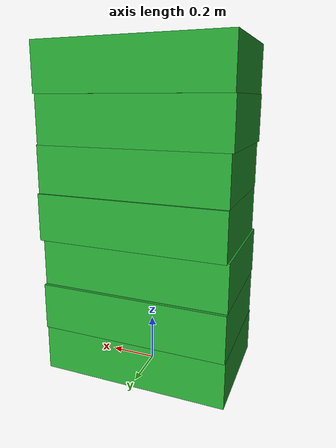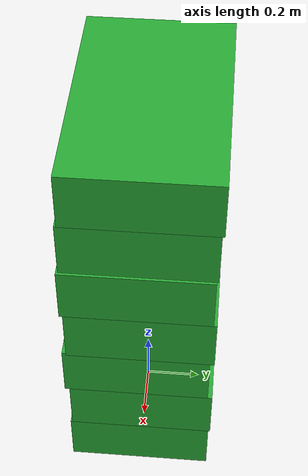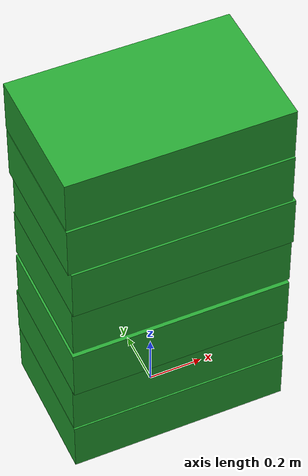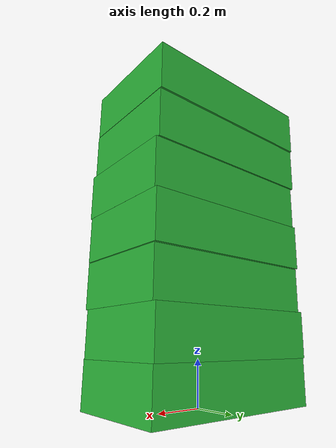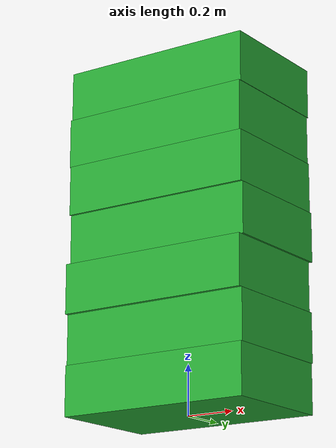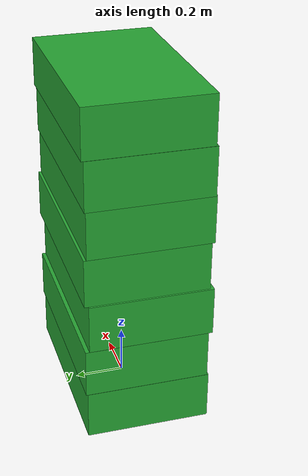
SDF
<?xml version="1.0" encoding="UTF-8"?>
<sdf version='1.4'>
    <model name="baggage_D_x7">
        <model name="baggage_D_0">
            <static>true</static>
            <link name="link">
                <collision name="collision">
                    <geometry>
                    <box>
                        <size>0.8 0.5 0.2</size>
                    </box>
                    </geometry>
                </collision>
                <visual name="visual">
                    <geometry>
                    <box>
                        <size>0.8 0.5 0.2</size>
                    </box>
                    </geometry>
                    <material>
                    <script>
                        <uri>file://media/materials/scripts/gazebo.material</uri>
                        <name>Gazebo/Green</name>
                    </script>
                    </material>
                </visual>
            </link>
            <pose frame=''>0 0 0.1 0 0 0</pose>
        </model>
        <model name="baggage_D_1">
            <static>true</static>
            <link name="link">
                <collision name="collision">
                    <geometry>
                    <box>
                        <size>0.8 0.5 0.2</size>
                    </box>
                    </geometry>
                </collision>
                <visual name="visual">
                    <geometry>
                    <box>
                        <size>0.8 0.5 0.2</size>
                    </box>
                    </geometry>
                    <material>
                    <script>
                        <uri>file://media/materials/scripts/gazebo.material</uri>
                        <name>Gazebo/Green</name>
                    </script>
                    </material>
                </visual>
            </link>
            <pose frame=''>0.0009 0.0063 0.3 0 0 0</pose>
        </model>
        <model name="baggage_D_2">
            <static>true</static>
            <link name="link">
                <collision name="collision">
                    <geometry>
                    <box>
                        <size>0.8 0.5 0.2</size>
                    </box>
                    </geometry>
                </collision>
                <visual name="visual">
                    <geometry>
                    <box>
                        <size>0.8 0.5 0.2</size>
                    </box>
                    </geometry>
                    <material>
                    <script>
                        <uri>file://media/materials/scripts/gazebo.material</uri>
                        <name>Gazebo/Green</name>
                    </script>
                    </material>
                </visual>
            </link>
            <pose frame=''>0.0011 -0.0098 0.5 0 0 0</pose>
        </model>
        <model name="baggage_D_3">
            <static>true</static>
            <link name="link">
                <collision name="collision">
                    <geometry>
                    <box>
                        <size>0.8 0.5 0.2</size>
                    </box>
                    </geometry>
                </collision>
                <visual name="visual">
                    <geometry>
                    <box>
                        <size>0.8 0.5 0.2</size>
                    </box>
                    </geometry>
                    <material>
                    <script>
                        <uri>file://media/materials/scripts/gazebo.material</uri>
                        <name>Gazebo/Green</name>
                    </script>
                    </material>
                </visual>
            </link>
            <pose frame=''>0.0089 0.0055 0.7 0 0 0</pose>
        </model>
        <model name="baggage_D_4">
            <static>true</static>
            <link name="link">
                <collision name="collision">
                    <geometry>
                    <box>
                        <size>0.8 0.5 0.2</size>
                    </box>
                    </geometry>
                </collision>
                <visual name="visual">
                    <geometry>
                    <box>
                        <size>0.8 0.5 0.2</size>
                    </box>
                    </geometry>
                    <material>
                    <script>
                        <uri>file://media/materials/scripts/gazebo.material</uri>
                        <name>Gazebo/Green</name>
                    </script>
                    </material>
                </visual>
            </link>
            <pose frame=''>0.0090 -0.0056 0.9 0 0 0</pose>
        </model>
        <model name="baggage_D_5">
            <static>true</static>
            <link name="link">
                <collision name="collision">
                    <geometry>
                    <box>
                        <size>0.8 0.5 0.2</size>
                    </box>
                    </geometry>
                </collision>
                <visual name="visual">
                    <geometry>
                    <box>
                        <size>0.8 0.5 0.2</size>
                    </box>
                    </geometry>
                    <material>
                    <script>
                        <uri>file://media/materials/scripts/gazebo.material</uri>
                        <name>Gazebo/Green</name>
                    </script>
                    </material>
                </visual>
            </link>
            <pose frame=''>0.0001 0.0013 1.1 0 0 0</pose>
        </model>
        <model name="baggage_D_6">
            <static>true</static>
            <link name="link">
                <collision name="collision">
                    <geometry>
                    <box>
                        <size>0.8 0.5 0.2</size>
                    </box>
                    </geometry>
                </collision>
                <visual name="visual">
                    <geometry>
                    <box>
                        <size>0.8 0.5 0.2</size>
                    </box>
                    </geometry>
                    <material>
                    <script>
                        <uri>file://media/materials/scripts/gazebo.material</uri>
                        <name>Gazebo/Green</name>
                    </script>
                    </material>
                </visual>
            </link>
            <pose frame=''>0.0019 0.0090 1.3 0 0 0</pose>
        </model>
    </model>
</sdf>
